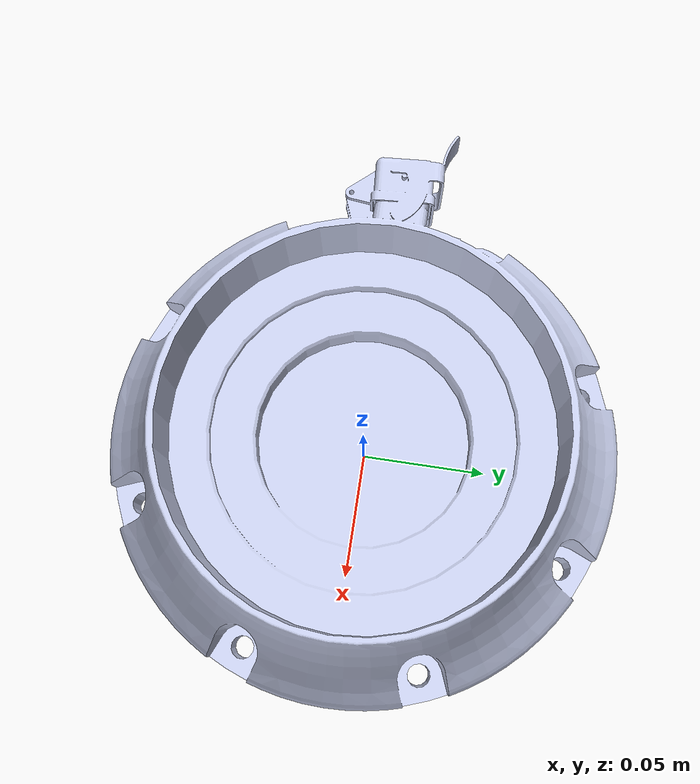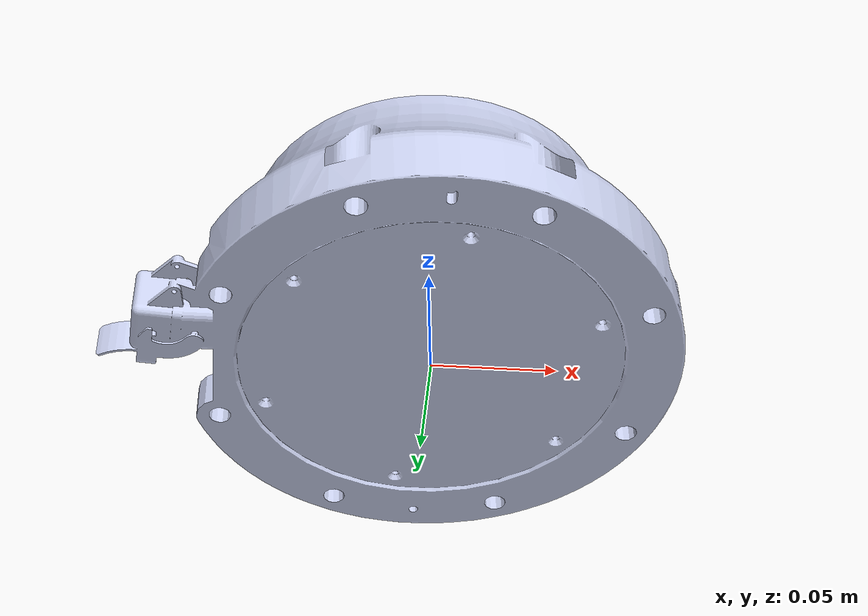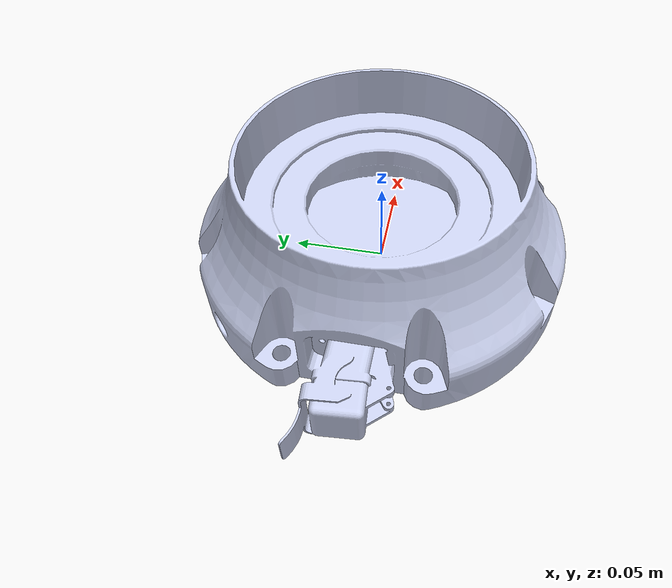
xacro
<?xml version="1.0"?>

<robot xmlns:xacro="http://ros.org/wiki/xacro" name="Base" >

    <link name="base_link">

           <inertial>

                <origin
                xyz="0 0 0"
                rpy="0 0 0"/>
                <mass  value="0.50" />
                <inertia
                        ixx="0.00552196561445819"
                        ixy="1.9550614501301E-10"
                        ixz="0.0"
                        iyy="0.00352397447953875"
                        iyz="-1.10071809773382E-08"
                        izz="0.00553739792746489" />
    </inertial>

          <visual>
                <origin
                    xyz="0 0 0"
                    rpy="0 0 0" />

                <geometry>
                    <mesh filename="package://robot_description/meshes/base.stl" />
                </geometry>

                <material name="">
                <color rgba="0.79216 0.81961 0.93333 1.0"/>
                </material>
          </visual>

          <collision>

             <origin
                xyz="0 0 0.0"
                rpy="0 0 3.14"/>
             <geometry>
                    <mesh filename="package://robot_description/meshes/base.stl" />
             </geometry>

          </collision>

    </link>
</robot>
